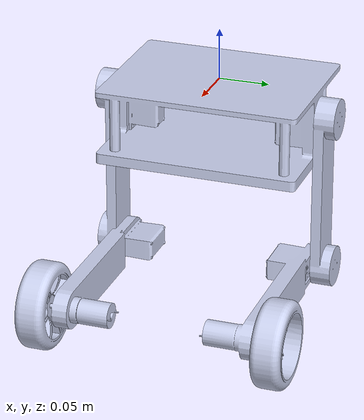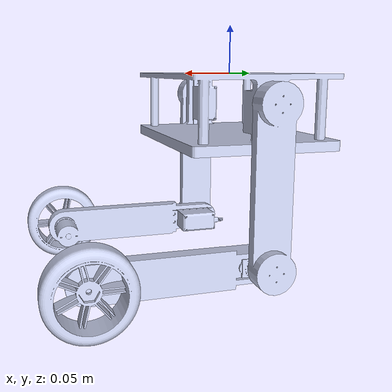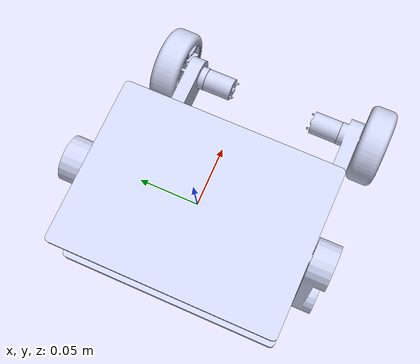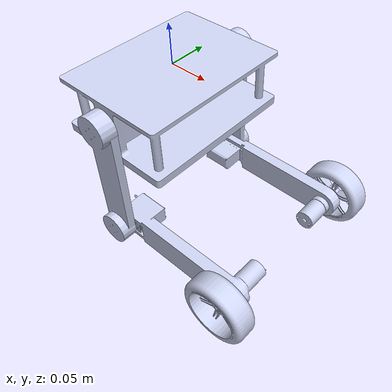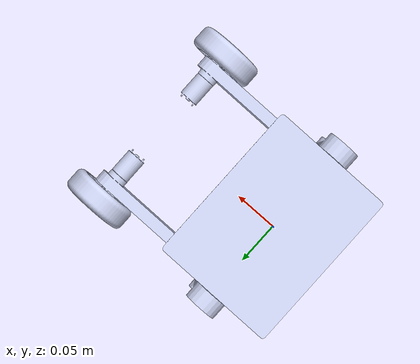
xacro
<?xml version="1.0"?>
<robot
  name="bipedal_description" xmlns:xacro = "https://www.ros.org/wiki/xacro">
  <link
    name="base_link">
    <inertial>
      <origin
        xyz="3.05311331771918E-16 6.66133814775094E-16 -0.0440368376270057"
        rpy="0 0 0" />
      <mass
        value="0.750578009276032" />
      <inertia
        ixx="0.00225703254075933"
        ixy="1.11805945563652E-12"
        ixz="1.02105322208042E-19"
        iyy="0.00137104483658563"
        iyz="3.52375371520983E-19"
        izz="0.00271105811285358" />
    </inertial>
    <visual>
      <origin
        xyz="0 0 0"
        rpy="0 0 0" />
      <geometry>
        <mesh
          filename="package://bipedal_description/meshes/base_link.STL" />
      </geometry>
      <material
        name="">
        <color
          rgba="0.792156862745098 0.819607843137255 0.933333333333333 1" />
      </material>
    </visual>
    <collision>
      <origin
        xyz="0 0 0"
        rpy="0 0 0" />
      <geometry>
        <mesh
          filename="package://bipedal_description/meshes/base_link.STL" />
      </geometry>
    </collision>
  </link>
  <link
    name="right_thigh">
    <inertial>
      <origin
        xyz="1.44589687722796E-08 -0.0777175782349957 0.00780976806817946"
        rpy="0 0 0" />
      <mass
        value="0.0929068550232159" />
      <inertia
        ixx="0.000342913281278675"
        ixy="1.04399813421277E-10"
        ixz="-6.30056356828866E-12"
        iyy="1.35719649442593E-05"
        iyz="4.09780078448163E-13"
        izz="0.000351405486173096" />
    </inertial>
    <visual>
      <origin
        xyz="0 0 0"
        rpy="0 0 0" />
      <geometry>
        <mesh
          filename="package://bipedal_description/meshes/right_thigh.STL" />
      </geometry>
      <material
        name="">
        <color
          rgba="0.792156862745098 0.819607843137255 0.933333333333333 1" />
      </material>
    </visual>
    <collision>
      <origin
        xyz="0 0 0"
        rpy="0 0 0" />
      <geometry>
        <mesh
          filename="package://bipedal_description/meshes/right_thigh.STL" />
      </geometry>
    </collision>
  </link>
  <joint
    name="right_base_thigh"
    type="revolute">
    <origin
      xyz="0 -0.1009 -0.026"
      rpy="1.5708 0 0" />
    <parent
      link="base_link" />
    <child
      link="right_thigh" />
    <axis
      xyz="0 0 1" />
    <limit
      lower="-1.57"
      upper="1.57"
      effort="30"
      velocity="20" />
  </joint>
  <link
    name="right_calf">
    <inertial>
      <origin
        xyz="-2.35409344795379E-10 -0.0897671251942293 -0.0144860741170414"
        rpy="0 0 0" />
      <mass
        value="0.243541854586354" />
      <inertia
        ixx="0.000223214998517886"
        ixy="-3.33581116515898E-13"
        ixz="-5.5902971664288E-13"
        iyy="2.33121171310356E-05"
        iyz="-1.56271221963117E-06"
        izz="0.000225311505505499" />
    </inertial>
    <visual>
      <origin
        xyz="0 0 0"
        rpy="0 0 0" />
      <geometry>
        <mesh
          filename="package://bipedal_description/meshes/right_calf.STL" />
      </geometry>
      <material
        name="">
        <color
          rgba="0.792156862745098 0.819607843137255 0.933333333333333 1" />
      </material>
    </visual>
    <collision>
      <origin
        xyz="0 0 0"
        rpy="0 0 0" />
      <geometry>
        <mesh
          filename="package://bipedal_description/meshes/right_calf.STL" />
      </geometry>
    </collision>
  </link>
  <joint
    name="right_thigh_calf"
    type="revolute">
    <origin
      xyz="0 -0.15544 0"
      rpy="0 0 1.5708" />
    <parent
      link="right_thigh" />
    <child
      link="right_calf" />
    <axis
      xyz="0 0 1" />
    <limit
      lower="-1.57"
      upper="1.57"
      effort="30"
      velocity="20" />
  </joint>
  <link
    name="right_wheel">
    <inertial>
      <origin
        xyz="8.44574813471492E-05 -6.46378206703158E-05 0.013877615860227"
        rpy="0 0 0" />
      <mass
        value="0.0746273902424652" />
      <inertia
        ixx="5.20407688715641E-05"
        ixy="-1.59160058079771E-09"
        ixz="1.72765460255098E-09"
        iyy="5.20396433942443E-05"
        iyz="-1.33122287628244E-09"
        izz="9.526913455805E-05" />
    </inertial>
    <visual>
      <origin
        xyz="0 0 0"
        rpy="0 0 0" />
      <geometry>
        <mesh
          filename="package://bipedal_description/meshes/right_wheel.STL" />
      </geometry>
      <material
        name="">
        <color
          rgba="0.792156862745098 0.819607843137255 0.933333333333333 1" />
      </material>
    </visual>
    <collision>
      <origin
        xyz="0 0 0"
        rpy="0 0 0" />
      <geometry>
        <mesh
          filename="package://bipedal_description/meshes/right_wheel.STL" />
      </geometry>
    </collision>
  </link>
  <joint
    name="right_calf_wheel"
    type="continuous">
    <origin
      xyz="0 -0.171 0"
      rpy="0 0 -1.5708" />
    <parent
      link="right_calf" />
    <child
      link="right_wheel" />
    <axis
      xyz="0 0 -1" />
    <limit
      effort="30"
      velocity="40" />

  </joint>
  <link
    name="left_thigh">
    <inertial>
      <origin
        xyz="1.44589686890129E-08 -0.0777175782349955 -0.0121902319318204"
        rpy="0 0 0" />
      <mass
        value="0.0929068550232159" />
      <inertia
        ixx="0.000342913281278675"
        ixy="1.04399813424612E-10"
        ixz="-6.30056349573642E-12"
        iyy="1.35719649442593E-05"
        iyz="4.09780136375723E-13"
        izz="0.000351405486173096" />
    </inertial>
    <visual>
      <origin
        xyz="0 0 0"
        rpy="0 0 0" />
      <geometry>
        <mesh
          filename="package://bipedal_description/meshes/left_thigh.STL" />
      </geometry>
      <material
        name="">
        <color
          rgba="0.792156862745098 0.819607843137255 0.933333333333333 1" />
      </material>
    </visual>
    <collision>
      <origin
        xyz="0 0 0"
        rpy="0 0 0" />
      <geometry>
        <mesh
          filename="package://bipedal_description/meshes/left_thigh.STL" />
      </geometry>
    </collision>
  </link>
  <joint
    name="left_base_thigh"
    type="revolute">
    <origin
      xyz="0 0.1209 -0.026"
      rpy="1.5708 0 3.1416" />
    <parent
      link="base_link" />
    <child
      link="left_thigh" />
    <axis
      xyz="0 0 1" />
    <limit
      lower="-1.57"
      upper="1.57"
      effort="30"
      velocity="20" />
  </joint>
  <link
    name="left_calf">
    <inertial>
      <origin
        xyz="-2.35459735042909E-10 -0.0897671251942163 -0.0230860741170443"
        rpy="0 0 0" />
      <mass
        value="0.243541854586354" />
      <inertia
        ixx="0.000223214998517885"
        ixy="-3.3358091573014E-13"
        ixz="-5.59029702046347E-13"
        iyy="2.33121171310354E-05"
        iyz="-1.56271221963114E-06"
        izz="0.000225311505505499" />
    </inertial>
    <visual>
      <origin
        xyz="0 0 0"
        rpy="0 0 0" />
      <geometry>
        <mesh
          filename="package://bipedal_description/meshes/left_calf.STL" />
      </geometry>
      <material
        name="">
        <color
          rgba="0.792156862745098 0.819607843137255 0.933333333333333 1" />
      </material>
    </visual>
    <collision>
      <origin
        xyz="0 0 0"
        rpy="0 0 0" />
      <geometry>
        <mesh
          filename="package://bipedal_description/meshes/left_calf.STL" />
      </geometry>
    </collision>
  </link>
  <joint
    name="left_thigh_calf"
    type="revolute">
    <origin
      xyz="0 -0.15544 -0.0114"
      rpy="0 0 -1.5708" />
    <parent
      link="left_thigh" />
    <child
      link="left_calf" />
    <axis
      xyz="0 0 1" />
    <limit
      lower="-1.57"
      upper="1.57"
      effort="30"
      velocity="20" />
  </joint>
  <link
    name="left_wheel">
    <inertial>
      <origin
        xyz="8.44574813316928E-05 -6.46378206606568E-05 0.00527761586022657"
        rpy="0 0 0" />
      <mass
        value="0.0746273902424651" />
      <inertia
        ixx="5.2040768871564E-05"
        ixy="-1.59160058077952E-09"
        ixz="1.72765460258245E-09"
        iyy="5.20396433942441E-05"
        iyz="-1.33122287629024E-09"
        izz="9.52691345580497E-05" />
    </inertial>
    <visual>
      <origin
        xyz="0 0 0"
        rpy="0 0 0" />
      <geometry>
        <mesh
          filename="package://bipedal_description/meshes/left_wheel.STL" />
      </geometry>
      <material
        name="">
        <color
          rgba="0.792156862745098 0.819607843137255 0.933333333333333 1" />
      </material>
    </visual>
    <collision>
      <origin
        xyz="0 0 0"
        rpy="0 0 0" />
      <geometry>
        <mesh
          filename="package://bipedal_description/meshes/left_wheel.STL" />
      </geometry>
    </collision>
  </link>
  <joint
    name="left_calf_wheel"
    type="continuous">
    <origin
      xyz="0 -0.171 0"
      rpy="0 0 1.5708" />
    <parent
      link="left_calf" />
    <child
      link="left_wheel" />
    <axis
      xyz="0 0 1" />
    <limit
      effort="30"
      velocity="40" />
  </joint>
</robot>
